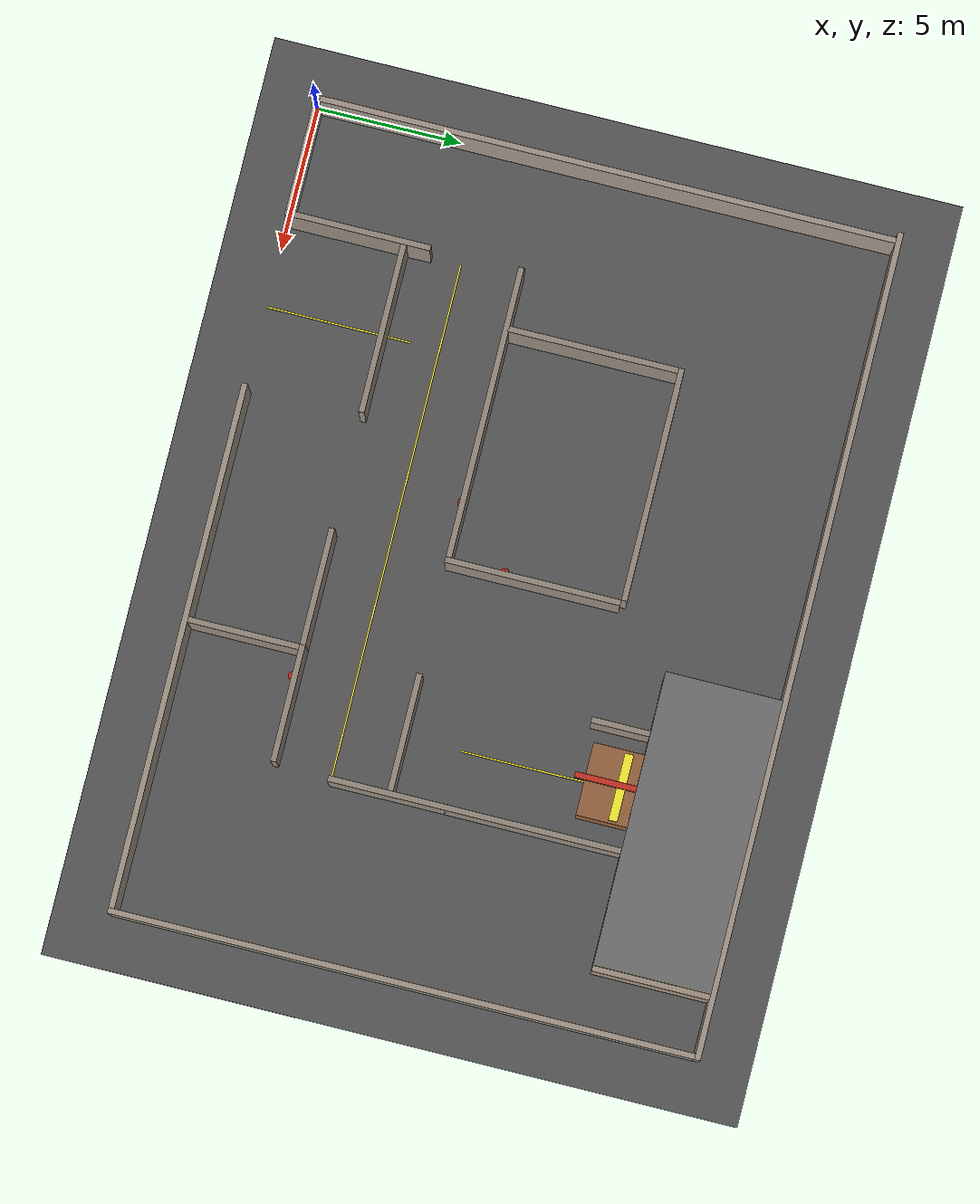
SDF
<?xml version="1.0"?>
<sdf version="1.7">
  <world name="factory">

    <!-- ============ 物理引擎 ============ -->
    <physics type="ode">
      <max_step_size>0.001</max_step_size>
      <real_time_factor>1.0</real_time_factor>
      <real_time_update_rate>1000</real_time_update_rate>
      <gravity>0 0 -9.81</gravity>
    </physics>

    <!-- ============ 场景光照 (白天) ============ -->
    <scene>
      <ambient>0.7 0.7 0.7 1.0</ambient>
      <background>0.4 0.6 0.9 1.0</background>
      <shadows>true</shadows>

      <light name="sun" type="directional">
        <pose>0 0 15 0 0 0</pose>
        <diffuse>1.0 0.98 0.9 1.0</diffuse>
        <specular>0.3 0.3 0.3 1.0</specular>
        <direction>0.3 -0.3 -1</direction>
        <cast_shadows>true</cast_shadows>
        <attenuation>
          <range>50</range>
          <constant>0.9</constant>
          <linear>0.01</linear>
          <quadratic>0.001</quadratic>
        </attenuation>
      </light>

      <light name="fill_corridor" type="point">
        <pose>14 6 2.8 0 0 0</pose>
        <diffuse>0.5 0.5 0.55 1.0</diffuse>
        <specular>0.05 0.05 0.05 1.0</specular>
        <attenuation>
          <range>20</range>
          <constant>0.5</constant>
          <linear>0.05</linear>
          <quadratic>0.01</quadratic>
        </attenuation>
        <cast_shadows>false</cast_shadows>
      </light>

      <light name="fill_core" type="point">
        <pose>22 18 2.5 0 0 0</pose>
        <diffuse>0.6 0.6 0.65 1.0</diffuse>
        <specular>0.08 0.08 0.08 1.0</specular>
        <attenuation>
          <range>15</range>
          <constant>0.5</constant>
          <linear>0.05</linear>
          <quadratic>0.01</quadratic>
        </attenuation>
        <cast_shadows>false</cast_shadows>
      </light>

      <light name="fill_start" type="point">
        <pose>7 3 2.5 0 0 0</pose>
        <diffuse>0.45 0.45 0.5 1.0</diffuse>
        <specular>0.05 0.05 0.05 1.0</specular>
        <attenuation>
          <range>12</range>
          <constant>0.5</constant>
          <linear>0.05</linear>
          <quadratic>0.01</quadratic>
        </attenuation>
        <cast_shadows>false</cast_shadows>
      </light>
    </scene>

    <!-- ============ 地面 ============ -->
    <model name="factory_floor">
      <static>true</static>
      <link name="floor">
        <collision name="collision">
          <geometry><box><size>32 24 0.1</size></box></geometry>
          <surface><friction><ode><mu>0.8</mu><mu2>0.8</mu2></ode></friction></surface>
        </collision>
        <visual name="visual">
          <geometry><box><size>32 24 0.1</size></box></geometry>
          <material>
            <ambient>0.25 0.25 0.25 1.0</ambient>
            <diffuse>0.35 0.35 0.35 1.0</diffuse>
          </material>
        </visual>
      </link>
      <pose>14 10 -0.05 0 0 0</pose>
    </model>

    <!-- ================================================================
         围墙 — 工厂外围 28m×20m, 高3m, 厚0.2m
         ================================================================ -->

    <!-- 南墙西段 (入口左侧) -->
    <model name="wall_exterior_south_west"><static>true</static>
      <link name="w"><collision name="c"><geometry><box><size>4 0.2 3</size></box></geometry></collision>
        <visual name="v"><geometry><box><size>4 0.2 3</size></box></geometry>
          <material><ambient>0.55 0.5 0.45 1</ambient><diffuse>0.65 0.6 0.55 1</diffuse></material></visual></link>
      <pose>2 0.1 1.5 0 0 0</pose></model>

    <!-- 南墙东段 (入口右侧) -->
    <model name="wall_exterior_south_east"><static>true</static>
      <link name="w"><collision name="c"><geometry><box><size>18 0.2 3</size></box></geometry></collision>
        <visual name="v"><geometry><box><size>18 0.2 3</size></box></geometry>
          <material><ambient>0.55 0.5 0.45 1</ambient><diffuse>0.65 0.6 0.55 1</diffuse></material></visual></link>
      <pose>19 0.1 1.5 0 0 0</pose></model>

    <!-- 西墙 -->
    <model name="wall_exterior_west"><static>true</static>
      <link name="w"><collision name="c"><geometry><box><size>0.2 20 3</size></box></geometry></collision>
        <visual name="v"><geometry><box><size>0.2 20 3</size></box></geometry>
          <material><ambient>0.55 0.5 0.45 1</ambient><diffuse>0.65 0.6 0.55 1</diffuse></material></visual></link>
      <pose>0.1 10 1.5 0 0 0</pose></model>

    <!-- 东墙 -->
    <model name="wall_exterior_east"><static>true</static>
      <link name="w"><collision name="c"><geometry><box><size>0.2 20 3</size></box></geometry></collision>
        <visual name="v"><geometry><box><size>0.2 20 3</size></box></geometry>
          <material><ambient>0.55 0.5 0.45 1</ambient><diffuse>0.65 0.6 0.55 1</diffuse></material></visual></link>
      <pose>28.1 10 1.5 0 0 0</pose></model>

    <!-- 北墙 -->
    <model name="wall_exterior_north"><static>true</static>
      <link name="w"><collision name="c"><geometry><box><size>28.4 0.2 3</size></box></geometry></collision>
        <visual name="v"><geometry><box><size>28.4 0.2 3</size></box></geometry>
          <material><ambient>0.55 0.5 0.45 1</ambient><diffuse>0.65 0.6 0.55 1</diffuse></material></visual></link>
      <pose>14 20.1 1.5 0 0 0</pose></model>

    <!-- === 入口区西墙 === -->
    <model name="wall_entry_west"><static>true</static>
      <link name="w"><collision name="c"><geometry><box><size>0.2 5 3</size></box></geometry></collision>
        <visual name="v"><geometry><box><size>0.2 5 3</size></box></geometry>
          <material><ambient>0.45 0.42 0.38 1</ambient><diffuse>0.6 0.55 0.5 1</diffuse></material></visual></link>
      <pose>4.1 2.5 1.5 0 0 0</pose></model>

    <!-- === 工位A 东墙 === -->
    <model name="wall_workshop_east"><static>true</static>
      <link name="w"><collision name="c"><geometry><box><size>0.2 4 3</size></box></geometry></collision>
        <visual name="v"><geometry><box><size>0.2 4 3</size></box></geometry>
          <material><ambient>0.45 0.42 0.38 1</ambient><diffuse>0.6 0.55 0.5 1</diffuse></material></visual></link>
      <pose>18.1 2 1.5 0 0 0</pose></model>

    <!-- === 工位A 北墙 (也是东走廊南墙的东段) === -->
    <model name="wall_workshop_north"><static>true</static>
      <link name="w"><collision name="c"><geometry><box><size>4 0.2 3</size></box></geometry></collision>
        <visual name="v"><geometry><box><size>4 0.2 3</size></box></geometry>
          <material><ambient>0.45 0.42 0.38 1</ambient><diffuse>0.6 0.55 0.5 1</diffuse></material></visual></link>
      <pose>16 4.1 1.5 0 0 0</pose></model>

    <!-- === 东走廊南墙西段 (入口区北墙) === -->
    <model name="wall_corridor_ew_south_west"><static>true</static>
      <link name="w"><collision name="c"><geometry><box><size>6 0.2 3</size></box></geometry></collision>
        <visual name="v"><geometry><box><size>6 0.2 3</size></box></geometry>
          <material><ambient>0.45 0.42 0.38 1</ambient><diffuse>0.6 0.55 0.5 1</diffuse></material></visual></link>
      <pose>7 4.1 1.5 0 0 0</pose></model>

    <!-- === 东走廊南墙东段 === -->
    <model name="wall_corridor_ew_south_east"><static>true</static>
      <link name="w"><collision name="c"><geometry><box><size>4 0.2 3</size></box></geometry></collision>
        <visual name="v"><geometry><box><size>4 0.2 3</size></box></geometry>
          <material><ambient>0.45 0.42 0.38 1</ambient><diffuse>0.6 0.55 0.5 1</diffuse></material></visual></link>
      <pose>20 4.1 1.5 0 0 0</pose></model>

    <!-- === 东走廊北墙西段 (也是控制室南墙) === -->
    <model name="wall_corridor_ew_north_west"><static>true</static>
      <link name="w"><collision name="c"><geometry><box><size>10 0.2 3</size></box></geometry></collision>
        <visual name="v"><geometry><box><size>10 0.2 3</size></box></geometry>
          <material><ambient>0.45 0.42 0.38 1</ambient><diffuse>0.6 0.55 0.5 1</diffuse></material></visual></link>
      <pose>9 8.1 1.5 0 0 0</pose></model>

    <!-- === 东走廊北墙东段 === -->
    <model name="wall_corridor_ew_north_east"><static>true</static>
      <link name="w"><collision name="c"><geometry><box><size>4 0.2 3</size></box></geometry></collision>
        <visual name="v"><geometry><box><size>4 0.2 3</size></box></geometry>
          <material><ambient>0.45 0.42 0.38 1</ambient><diffuse>0.6 0.55 0.5 1</diffuse></material></visual></link>
      <pose>20 8.1 1.5 0 0 0</pose></model>

    <!-- === 控制室西墙 === -->
    <model name="wall_control_west"><static>true</static>
      <link name="w"><collision name="c"><geometry><box><size>0.2 6 3</size></box></geometry></collision>
        <visual name="v"><geometry><box><size>0.2 6 3</size></box></geometry>
          <material><ambient>0.45 0.42 0.38 1</ambient><diffuse>0.6 0.55 0.5 1</diffuse></material></visual></link>
      <pose>6.1 11 1.5 0 0 0</pose></model>

    <!-- === 控制室北墙 === -->
    <model name="wall_control_north"><static>true</static>
      <link name="w"><collision name="c"><geometry><box><size>8 0.2 3</size></box></geometry></collision>
        <visual name="v"><geometry><box><size>8 0.2 3</size></box></geometry>
          <material><ambient>0.45 0.42 0.38 1</ambient><diffuse>0.6 0.55 0.5 1</diffuse></material></visual></link>
      <pose>10 14.1 1.5 0 0 0</pose></model>

    <!-- === 控制室东墙 (也是北走廊西墙下段) === -->
    <model name="wall_control_east"><static>true</static>
      <link name="w"><collision name="c"><geometry><box><size>0.2 6 3</size></box></geometry></collision>
        <visual name="v"><geometry><box><size>0.2 6 3</size></box></geometry>
          <material><ambient>0.45 0.42 0.38 1</ambient><diffuse>0.6 0.55 0.5 1</diffuse></material></visual></link>
      <pose>14.1 11 1.5 0 0 0</pose></model>

    <!-- === 北走廊西墙上段 === -->
    <model name="wall_corridor_ns_west_upper"><static>true</static>
      <link name="w"><collision name="c"><geometry><box><size>0.2 4 3</size></box></geometry></collision>
        <visual name="v"><geometry><box><size>0.2 4 3</size></box></geometry>
          <material><ambient>0.45 0.42 0.38 1</ambient><diffuse>0.6 0.55 0.5 1</diffuse></material></visual></link>
      <pose>18.1 16 1.5 0 0 0</pose></model>

    <!-- === 北走廊东墙全段 === -->
    <model name="wall_corridor_ns_east"><static>true</static>
      <link name="w"><collision name="c"><geometry><box><size>0.2 12 3</size></box></geometry></collision>
        <visual name="v"><geometry><box><size>0.2 12 3</size></box></geometry>
          <material><ambient>0.45 0.42 0.38 1</ambient><diffuse>0.6 0.55 0.5 1</diffuse></material></visual></link>
      <pose>22.1 12 1.5 0 0 0</pose></model>

    <!-- === 核心室南墙西段 === -->
    <model name="wall_core_south_west"><static>true</static>
      <link name="w"><collision name="c"><geometry><box><size>4 0.2 3.5</size></box></geometry></collision>
        <visual name="v"><geometry><box><size>4 0.2 3.5</size></box></geometry>
          <material><ambient>0.5 0.45 0.4 1</ambient><diffuse>0.65 0.58 0.5 1</diffuse></material></visual></link>
      <pose>18 16.1 1.75 0 0 0</pose></model>

    <!-- === 核心室南墙东段 === -->
    <model name="wall_core_south_east"><static>true</static>
      <link name="w"><collision name="c"><geometry><box><size>4 0.2 3.5</size></box></geometry></collision>
        <visual name="v"><geometry><box><size>4 0.2 3.5</size></box></geometry>
          <material><ambient>0.5 0.45 0.4 1</ambient><diffuse>0.65 0.58 0.5 1</diffuse></material></visual></link>
      <pose>24 16.1 1.75 0 0 0</pose></model>

    <!-- === 核心室西墙 === -->
    <model name="wall_core_west"><static>true</static>
      <link name="w"><collision name="c"><geometry><box><size>0.2 4 3.5</size></box></geometry></collision>
        <visual name="v"><geometry><box><size>0.2 4 3.5</size></box></geometry>
          <material><ambient>0.5 0.45 0.4 1</ambient><diffuse>0.65 0.58 0.5 1</diffuse></material></visual></link>
      <pose>16.1 18 1.75 0 0 0</pose></model>

    <!-- === 核心室东墙 (也是工厂东墙上段) === -->
    <model name="wall_core_east"><static>true</static>
      <link name="w"><collision name="c"><geometry><box><size>0.2 4 3.5</size></box></geometry></collision>
        <visual name="v"><geometry><box><size>0.2 4 3.5</size></box></geometry>
          <material><ambient>0.5 0.45 0.4 1</ambient><diffuse>0.65 0.58 0.5 1</diffuse></material></visual></link>
      <pose>26.1 18 1.75 0 0 0</pose></model>

    <!-- === 核心室天花板 === -->
    <model name="core_ceiling"><static>true</static>
      <link name="c"><collision name="cc"><geometry><box><size>10 4 0.1</size></box></geometry>
        <surface><friction><ode><mu>0.3</mu><mu2>0.3</mu2></ode></friction></surface></collision>
        <visual name="cv"><geometry><box><size>10 4 0.1</size></box></geometry>
          <material><ambient>0.35 0.35 0.35 1</ambient><diffuse>0.45 0.45 0.45 1</diffuse></material></visual></link>
      <pose>21 18 3.55 0 0 0</pose></model>

    <!-- === 核心室入口上方横梁 === -->
    <model name="core_entrance_beam"><static>true</static>
      <link name="b"><collision name="bc"><geometry><box><size>0.2 4.2 0.3</size></box></geometry></collision>
        <visual name="bv"><geometry><box><size>0.2 4.2 0.3</size></box></geometry>
          <material><ambient>0.7 0.15 0.1 1</ambient><diffuse>0.8 0.2 0.15 1</diffuse></material></visual></link>
      <pose>20 16 3.0 0 0 0</pose></model>

    <!-- ============ 障碍物 — 挡住核心室入口 ============ -->
    <include>
      <uri>model://pushable_obstacle</uri>
      <name>entry_obstacle</name>
      <pose>20 15.5 1.0 0 0 0</pose>
    </include>

    <!-- ================================================================
         灾害标识 ×5 (走廊沿线)  +  ×3 (核心室内)
         ================================================================ -->

    <!-- 标识1: 入口区西墙, 面朝东 -->
    <include><uri>model://disaster_sign</uri><name>sign_01</name>
      <pose>4.05 3 1.5 0 0 1.5708</pose></include>

    <!-- 标识2: 东走廊北墙, 面朝南 -->
    <include><uri>model://disaster_sign</uri><name>sign_02</name>
      <pose>12 8.05 1.5 0 0 3.1416</pose></include>

    <!-- 标识3: 东走廊南墙, 面朝北 -->
    <include><uri>model://disaster_sign</uri><name>sign_03</name>
      <pose>19 3.95 1.5 0 0 0</pose></include>

    <!-- 标识4: 北走廊东墙, 面朝西 -->
    <include><uri>model://disaster_sign</uri><name>sign_04</name>
      <pose>22.05 10 1.5 0 0 -1.5708</pose></include>

    <!-- 标识5: 控制室东墙外侧(走廊内), 面朝东 -->
    <include><uri>model://disaster_sign</uri><name>sign_05</name>
      <pose>13.95 10 1.5 0 0 1.5708</pose></include>

    <!-- 核心标识1: 核心室西墙内侧, 面朝东 -->
    <include><uri>model://disaster_sign</uri><name>sign_core_01</name>
      <pose>16.05 17.5 1.5 0 0 1.5708</pose></include>

    <!-- 核心标识2: 核心室东墙内侧, 面朝西 -->
    <include><uri>model://disaster_sign</uri><name>sign_core_02</name>
      <pose>25.95 19 1.5 0 0 -1.5708</pose></include>

    <!-- 核心标识3: 核心室北墙内侧, 面朝南 -->
    <include><uri>model://disaster_sign</uri><name>sign_core_03</name>
      <pose>21 20.05 1.5 0 0 0</pose></include>

    <!-- ============ 地面标线 (转弯引导) ============ -->
    <!-- 入口→东走廊 -->
    <model name="line_entry"><static>true</static>
      <link name="l"><visual name="lv"><geometry><box><size>0.06 5 0.005</size></box></geometry>
        <material><ambient>0.9 0.85 0.1 1</ambient><diffuse>1 0.95 0.2 1</diffuse></material></visual></link>
      <pose>7 2.5 0.01 0 0 0</pose></model>

    <!-- 东走廊直行 -->
    <model name="line_corridor_ew"><static>true</static>
      <link name="l"><visual name="lv"><geometry><box><size>18 0.06 0.005</size></box></geometry>
        <material><ambient>0.9 0.85 0.1 1</ambient><diffuse>1 0.95 0.2 1</diffuse></material></visual></link>
      <pose>13 6 0.01 0 0 0</pose></model>

    <!-- 北走廊直行 -->
    <model name="line_corridor_ns"><static>true</static>
      <link name="l"><visual name="lv"><geometry><box><size>0.06 6 0.005</size></box></geometry>
        <material><ambient>0.9 0.85 0.1 1</ambient><diffuse>1 0.95 0.2 1</diffuse></material></visual></link>
      <pose>20 13 0.01 0 0 0</pose></model>

  </world>
</sdf>

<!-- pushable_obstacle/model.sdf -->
<sdf version="1.7">
  <model name="pushable_obstacle">
    <!-- 事故封堵障碍物: 大型混凝土块/设备箱 -->
    <link name="obstacle_body">
      <!-- 惯性 -->
      <inertial>
        <mass>300.0</mass>
        <inertia>
          <ixx>250.0</ixx>
          <iyy>250.0</iyy>
          <izz>250.0</izz>
          <ixy>0</ixy>
          <ixz>0</ixz>
          <iyz>0</iyz>
        </inertia>
        <pose>0 0 0 0 0 0</pose>
      </inertial>

      <!-- 碰撞 -->
      <collision name="obstacle_collision">
        <geometry>
          <box>
            <size>2.5 2.5 2.0</size>
          </box>
        </geometry>
        <surface>
          <friction>
            <ode>
              <mu>0.6</mu>
              <mu2>0.6</mu2>
              <fdir1>0 0 0</fdir1>
              <slip1>0</slip1>
              <slip2>0</slip2>
            </ode>
          </friction>
          <contact>
            <ode>
              <kp>1e6</kp>
              <kd>100</kd>
            </ode>
          </contact>
        </surface>
        <max_contacts>10</max_contacts>
      </collision>

      <!-- 外观 -->
      <visual name="obstacle_visual">
        <geometry>
          <box>
            <size>2.5 2.5 2.0</size>
          </box>
        </geometry>
        <material>
          <ambient>0.45 0.3 0.2 1.0</ambient>
          <diffuse>0.6 0.4 0.25 1.0</diffuse>
          <specular>0.1 0.1 0.1 1.0</specular>
        </material>
      </visual>

      <!-- 警告条纹装饰 -->
      <visual name="stripe_visual">
        <pose>0 0 1.01 0 0 0</pose>
        <geometry>
          <box>
            <size>2.3 0.3 0.02</size>
          </box>
        </geometry>
        <material>
          <ambient>0.9 0.85 0.1 1.0</ambient>
          <diffuse>1.0 0.95 0.2 1.0</diffuse>
        </material>
      </visual>

      <visual name="stripe_visual2">
        <pose>0 0 -1.01 0 0 0</pose>
        <geometry>
          <box>
            <size>2.3 0.3 0.02</size>
          </box>
        </geometry>
        <material>
          <ambient>0.9 0.85 0.1 1.0</ambient>
          <diffuse>1.0 0.95 0.2 1.0</diffuse>
        </material>
      </visual>

    </link>
  </model>
</sdf>

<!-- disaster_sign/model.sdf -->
<sdf version="1.7">
  <model name="disaster_sign">
    <!-- 灾害标识牌: 挂在墙壁上，用于视觉识别 -->
    <static>true</static>
    <link name="sign_body">
      <!-- 底板 -->
      <visual name="sign_plate">
        <geometry>
          <box>
            <size>0.5 0.02 0.5</size>
          </box>
        </geometry>
        <material>
          <ambient>0.95 0.95 0.9 1.0</ambient>
          <diffuse>1.0 1.0 0.95 1.0</diffuse>
        </material>
      </visual>

      <!-- 边框 -->
      <visual name="sign_border">
        <geometry>
          <box>
            <size>0.54 0.005 0.54</size>
          </box>
        </geometry>
        <material>
          <ambient>0.1 0.1 0.1 1.0</ambient>
          <diffuse>0.15 0.15 0.15 1.0</diffuse>
        </material>
      </visual>

      <!-- 中心图案 (占位圆) — 实际比赛需替换为灾害标识纹理 -->
      <visual name="sign_symbol">
        <pose>0 0.012 0 0 0 0</pose>
        <geometry>
          <cylinder>
            <radius>0.15</radius>
            <length>0.005</length>
          </cylinder>
        </geometry>
        <material>
          <ambient>0.8 0.1 0.1 1.0</ambient>
          <diffuse>0.85 0.15 0.15 1.0</diffuse>
        </material>
      </visual>
    </link>
  </model>
</sdf>
